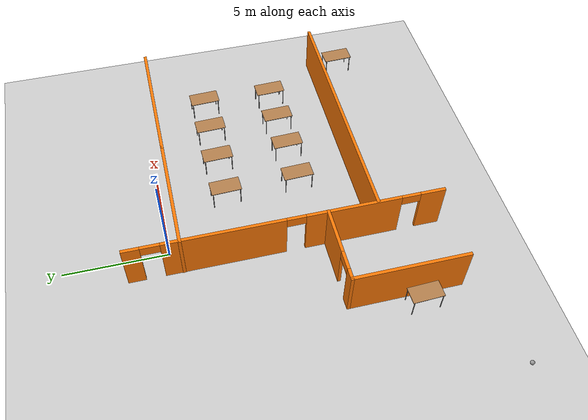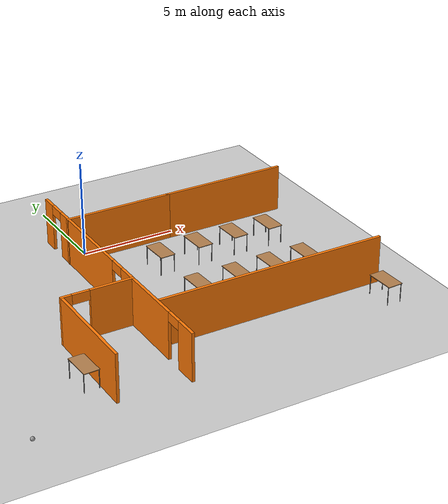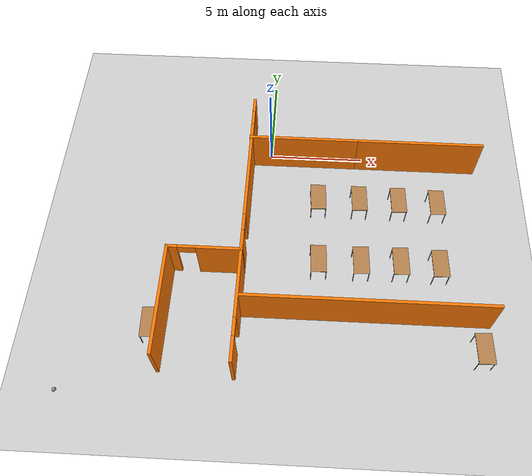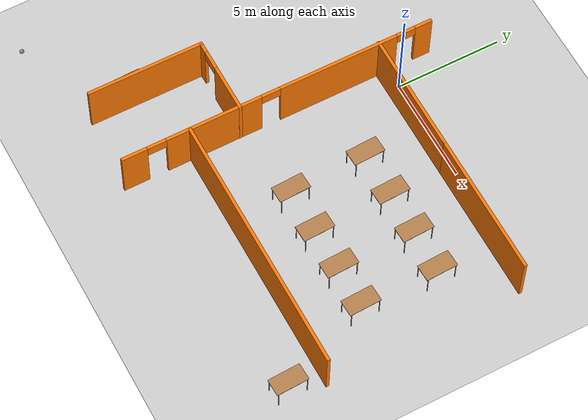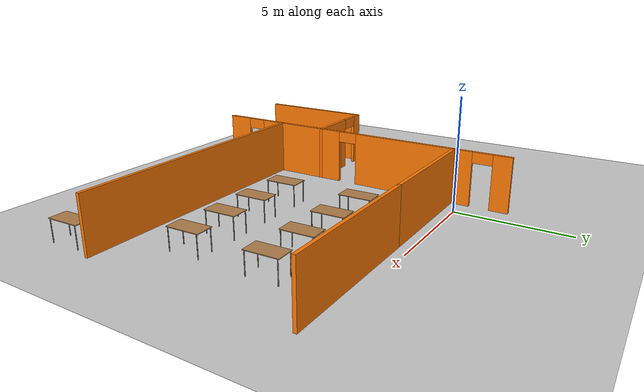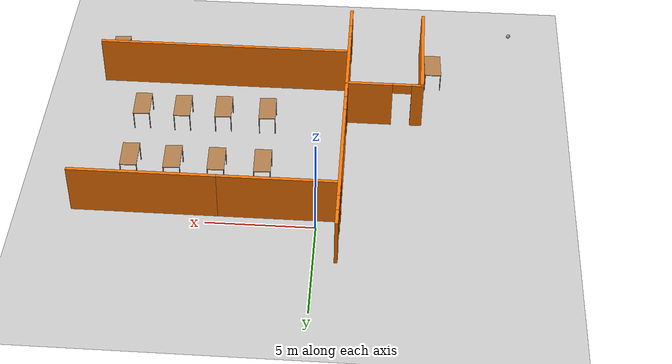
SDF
<sdf version="1.6">
 <world name="default">
  <model name="ground_plane">
   <static>1</static>
   <link name="link">
    <collision name="collision">
     <geometry><plane><normal>0 0 1</normal><size>100 100</size></plane></geometry>
     <surface><friction><ode><mu>100</mu><mu2>50</mu2></ode></friction></surface>
    </collision>
    <visual name="visual">
     <cast_shadows>0</cast_shadows>
     <geometry><plane><normal>0 0 1</normal><size>100 100</size></plane></geometry>
     <material>
      <script><uri>file://media/materials/scripts/gazebo.material</uri><name>Gazebo/Grey</name></script>
     </material>
    </visual>
   </link>
  </model>
  <model name="Building">
   <pose>-10.6691 -0.0294 0 0 -0 0</pose>
   <link name="Wall_169">
    <collision name="Wall_169_Collision">
     <geometry><box><size>6.75 0.15 2.5</size></box></geometry>
     <pose>0 0 1.25 0 -0 0</pose>
    </collision>
    <visual name="Wall_169_Visual">
     <pose>0 0 1.25 0 -0 0</pose>
     <geometry><box><size>6.75 0.15 2.5</size></box></geometry>
     <material>
      <script><uri>file://media/materials/scripts/gazebo.material</uri><name>Gazebo/Grey</name></script>
      <ambient>0.996078 0.47451 0.0196078 1</ambient>
     </material>
     <meta><layer>0</layer></meta>
    </visual>
    <pose>18.5204 -0.507347 0 0 -0 0</pose>
   </link>
   <link name="Wall_177">
    <pose>9.64433 -5.41765 0 0 0 -1.5708</pose>
    <visual name="Wall_177_Visual_0">
     <pose>-7.08426 0 1.25 0 -0 0</pose>
     <geometry><box><size>0.83148 0.15 2.5</size></box></geometry>
     <material>
      <script><uri>file://media/materials/scripts/gazebo.material</uri><name>Gazebo/Grey</name></script>
      <ambient>0.996078 0.47451 0.0196078 1</ambient>
     </material>
     <meta><layer>0</layer></meta>
    </visual>
    <collision name="Wall_177_Collision_0">
     <geometry><box><size>0.83148 0.15 2.5</size></box></geometry>
     <pose>-7.08426 0 1.25 0 -0 0</pose>
    </collision>
    <visual name="Wall_177_Visual_1">
     <pose>-2.91238 0 1.25 0 -0 0</pose>
     <geometry><box><size>5.71227 0.15 2.5</size></box></geometry>
     <material>
      <script><uri>file://media/materials/scripts/gazebo.material</uri><name>Gazebo/Grey</name></script>
      <ambient>0.996078 0.47451 0.0196078 1</ambient>
     </material>
     <meta><layer>0</layer></meta>
    </visual>
    <collision name="Wall_177_Collision_1">
     <geometry><box><size>5.71227 0.15 2.5</size></box></geometry>
     <pose>-2.91238 0 1.25 0 -0 0</pose>
    </collision>
    <visual name="Wall_177_Visual_2">
     <pose>3.11521 0 1.25 0 -0 0</pose>
     <geometry><box><size>4.5429 0.15 2.5</size></box></geometry>
     <material>
      <script><uri>file://media/materials/scripts/gazebo.material</uri><name>Gazebo/Grey</name></script>
      <ambient>0.996078 0.47451 0.0196078 1</ambient>
     </material>
     <meta><layer>0</layer></meta>
    </visual>
    <collision name="Wall_177_Collision_2">
     <geometry><box><size>4.5429 0.15 2.5</size></box></geometry>
     <pose>3.11521 0 1.25 0 -0 0</pose>
    </collision>
    <visual name="Wall_177_Visual_3">
     <pose>6.89333 0 1.25 0 -0 0</pose>
     <geometry><box><size>1.21334 0.15 2.5</size></box></geometry>
     <material>
      <script><uri>file://media/materials/scripts/gazebo.material</uri><name>Gazebo/Grey</name></script>
      <ambient>0.996078 0.47451 0.0196078 1</ambient>
     </material>
     <meta><layer>0</layer></meta>
    </visual>
    <collision name="Wall_177_Collision_3">
     <geometry><box><size>1.21334 0.15 2.5</size></box></geometry>
     <pose>6.89333 0 1.25 0 -0 0</pose>
    </collision>
    <visual name="Wall_177_Visual_4">
     <pose>-6.21852 0 2.25 0 -0 0</pose>
     <geometry><box><size>0.9 0.15 0.5</size></box></geometry>
     <material>
      <script><uri>file://media/materials/scripts/gazebo.material</uri><name>Gazebo/Grey</name></script>
      <ambient>0.996078 0.47451 0.0196078 1</ambient>
     </material>
     <meta><layer>0</layer></meta>
    </visual>
    <collision name="Wall_177_Collision_4">
     <geometry><box><size>0.9 0.15 0.5</size></box></geometry>
     <pose>-6.21852 0 2.25 0 -0 0</pose>
    </collision>
    <visual name="Wall_177_Visual_5">
     <pose>0.393754 0 2.25 0 -0 0</pose>
     <geometry><box><size>0.9 0.15 0.5</size></box></geometry>
     <material>
      <script><uri>file://media/materials/scripts/gazebo.material</uri><name>Gazebo/Grey</name></script>
      <ambient>0.996078 0.47451 0.0196078 1</ambient>
     </material>
     <meta><layer>0</layer></meta>
    </visual>
    <collision name="Wall_177_Collision_5">
     <geometry><box><size>0.9 0.15 0.5</size></box></geometry>
     <pose>0.393754 0 2.25 0 -0 0</pose>
    </collision>
    <visual name="Wall_177_Visual_6">
     <pose>5.83666 0 2.25 0 -0 0</pose>
     <geometry><box><size>0.9 0.15 0.5</size></box></geometry>
     <material>
      <script><uri>file://media/materials/scripts/gazebo.material</uri><name>Gazebo/Grey</name></script>
      <ambient>0.996078 0.47451 0.0196078 1</ambient>
     </material>
     <meta><layer>0</layer></meta>
    </visual>
    <collision name="Wall_177_Collision_6">
     <geometry><box><size>0.9 0.15 0.5</size></box></geometry>
     <pose>5.83666 0 2.25 0 -0 0</pose>
    </collision>
   </link>
   <link name="Wall_179">
    <collision name="Wall_179_Collision">
     <geometry><box><size>5.75 0.15 2.5</size></box></geometry>
     <pose>0 0 1.25 0 -0 0</pose>
    </collision>
    <visual name="Wall_179_Visual">
     <pose>0 0 1.25 0 -0 0</pose>
     <geometry><box><size>5.75 0.15 2.5</size></box></geometry>
     <material>
      <script><uri>file://media/materials/scripts/gazebo.material</uri><name>Gazebo/Grey</name></script>
      <ambient>0.996078 0.47451 0.0196078 1</ambient>
     </material>
     <meta><layer>0</layer></meta>
    </visual>
    <pose>12.4204 -0.507347 0 0 -0 3.14159</pose>
   </link>
   <link name="Wall_181">
    <collision name="Wall_181_Collision">
     <geometry><box><size>12.25 0.15 2.5</size></box></geometry>
     <pose>0 0 1.25 0 -0 0</pose>
    </collision>
    <visual name="Wall_181_Visual">
     <pose>0 0 1.25 0 -0 0</pose>
     <geometry><box><size>12.25 0.15 2.5</size></box></geometry>
     <material>
      <script><uri>file://media/materials/scripts/gazebo.material</uri><name>Gazebo/Grey</name></script>
      <ambient>0.996078 0.47451 0.0196078 1</ambient>
     </material>
     <meta><layer>0</layer></meta>
    </visual>
    <pose>15.7415 -9.67071 0 0 -0 0</pose>
   </link>
   <link name="Wall_183">
    <pose>7.84956 -7.30115 0 0 -0 3.14159</pose>
    <visual name="Wall_183_Visual_0">
     <pose>-0.737336 0 1.25 0 -0 0</pose>
     <geometry><box><size>2.27533 0.15 2.5</size></box></geometry>
     <material>
      <script><uri>file://media/materials/scripts/gazebo.material</uri><name>Gazebo/Grey</name></script>
      <ambient>0.996078 0.47451 0.0196078 1</ambient>
     </material>
     <meta><layer>0</layer></meta>
    </visual>
    <collision name="Wall_183_Collision_0">
     <geometry><box><size>2.27533 0.15 2.5</size></box></geometry>
     <pose>-0.737336 0 1.25 0 -0 0</pose>
    </collision>
    <visual name="Wall_183_Visual_1">
     <pose>1.58766 0 1.25 0 -0 0</pose>
     <geometry><box><size>0.574672 0.15 2.5</size></box></geometry>
     <material>
      <script><uri>file://media/materials/scripts/gazebo.material</uri><name>Gazebo/Grey</name></script>
      <ambient>0.996078 0.47451 0.0196078 1</ambient>
     </material>
     <meta><layer>0</layer></meta>
    </visual>
    <collision name="Wall_183_Collision_1">
     <geometry><box><size>0.574672 0.15 2.5</size></box></geometry>
     <pose>1.58766 0 1.25 0 -0 0</pose>
    </collision>
    <visual name="Wall_183_Visual_2">
     <pose>0.850328 0 2.25 0 -0 0</pose>
     <geometry><box><size>0.9 0.15 0.5</size></box></geometry>
     <material>
      <script><uri>file://media/materials/scripts/gazebo.material</uri><name>Gazebo/Grey</name></script>
      <ambient>0.996078 0.47451 0.0196078 1</ambient>
     </material>
     <meta><layer>0</layer></meta>
    </visual>
    <collision name="Wall_183_Collision_2">
     <geometry><box><size>0.9 0.15 0.5</size></box></geometry>
     <pose>0.850328 0 2.25 0 -0 0</pose>
    </collision>
   </link>
   <link name="Wall_184">
    <collision name="Wall_184_Collision">
     <geometry><box><size>5.5 0.15 2.5</size></box></geometry>
     <pose>0 0 1.25 0 -0 0</pose>
    </collision>
    <visual name="Wall_184_Visual">
     <pose>0 0 1.25 0 -0 0</pose>
     <geometry><box><size>5.5 0.15 2.5</size></box></geometry>
     <material>
      <script><uri>file://media/materials/scripts/gazebo.material</uri><name>Gazebo/Grey</name></script>
      <ambient>0.996078 0.47451 0.0196078 1</ambient>
     </material>
     <meta><layer>0</layer></meta>
    </visual>
    <pose>6.04956 -9.97615 0 0 0 -1.5708</pose>
   </link>
   <static>1</static>
  </model>
  <model name="table_1_clone">
   <static>1</static>
   <link name="link">
    <collision name="surface">
     <pose>0 0 1 0 -0 0</pose>
     <geometry><box><size>1.5 0.8 0.03</size></box></geometry>
     <surface><friction><ode><mu>0.6</mu><mu2>0.6</mu2></ode></friction></surface>
    </collision>
    <visual name="visual1">
     <pose>0 0 1 0 -0 0</pose>
     <geometry><box><size>1.5 0.8 0.03</size></box></geometry>
     <material>
      <script><uri>file://media/materials/scripts/gazebo.material</uri><name>Gazebo/Wood</name></script>
     </material>
    </visual>
    <collision name="front_left_leg">
     <pose>0.68 0.38 0.5 0 -0 0</pose>
     <geometry><cylinder><radius>0.02</radius><length>1</length></cylinder></geometry>
    </collision>
    <visual name="front_left_leg">
     <pose>0.68 0.38 0.5 0 -0 0</pose>
     <geometry><cylinder><radius>0.02</radius><length>1</length></cylinder></geometry>
     <material>
      <script><uri>file://media/materials/scripts/gazebo.material</uri><name>Gazebo/Grey</name></script>
     </material>
    </visual>
    <collision name="front_right_leg">
     <pose>0.68 -0.38 0.5 0 -0 0</pose>
     <geometry><cylinder><radius>0.02</radius><length>1</length></cylinder></geometry>
    </collision>
    <visual name="front_right_leg">
     <pose>0.68 -0.38 0.5 0 -0 0</pose>
     <geometry><cylinder><radius>0.02</radius><length>1</length></cylinder></geometry>
     <material>
      <script><uri>file://media/materials/scripts/gazebo.material</uri><name>Gazebo/Grey</name></script>
     </material>
    </visual>
    <collision name="back_right_leg">
     <pose>-0.68 -0.38 0.5 0 -0 0</pose>
     <geometry><cylinder><radius>0.02</radius><length>1</length></cylinder></geometry>
    </collision>
    <visual name="back_right_leg">
     <pose>-0.68 -0.38 0.5 0 -0 0</pose>
     <geometry><cylinder><radius>0.02</radius><length>1</length></cylinder></geometry>
     <material>
      <script><uri>file://media/materials/scripts/gazebo.material</uri><name>Gazebo/Grey</name></script>
     </material>
    </visual>
    <collision name="back_left_leg">
     <pose>-0.68 0.38 0.5 0 -0 0</pose>
     <geometry><cylinder><radius>0.02</radius><length>1</length></cylinder></geometry>
    </collision>
    <visual name="back_left_leg">
     <pose>-0.68 0.38 0.5 0 -0 0</pose>
     <geometry><cylinder><radius>0.02</radius><length>1</length></cylinder></geometry>
     <material>
      <script><uri>file://media/materials/scripts/gazebo.material</uri><name>Gazebo/Grey</name></script>
     </material>
    </visual>
   </link>
   <pose>8.82431 -6.85187 0 0 -0 1.60797</pose>
  </model>
  <model name="table_1_clone_clone">
   <static>1</static>
   <link name="link">
    <collision name="surface">
     <pose>0 0 1 0 -0 0</pose>
     <geometry><box><size>1.5 0.8 0.03</size></box></geometry>
     <surface><friction><ode><mu>0.6</mu><mu2>0.6</mu2></ode></friction></surface>
    </collision>
    <visual name="visual1">
     <pose>0 0 1 0 -0 0</pose>
     <geometry><box><size>1.5 0.8 0.03</size></box></geometry>
     <material>
      <script><uri>file://media/materials/scripts/gazebo.material</uri><name>Gazebo/Wood</name></script>
     </material>
    </visual>
    <collision name="front_left_leg">
     <pose>0.68 0.38 0.5 0 -0 0</pose>
     <geometry><cylinder><radius>0.02</radius><length>1</length></cylinder></geometry>
    </collision>
    <visual name="front_left_leg">
     <pose>0.68 0.38 0.5 0 -0 0</pose>
     <geometry><cylinder><radius>0.02</radius><length>1</length></cylinder></geometry>
     <material>
      <script><uri>file://media/materials/scripts/gazebo.material</uri><name>Gazebo/Grey</name></script>
     </material>
    </visual>
    <collision name="front_right_leg">
     <pose>0.68 -0.38 0.5 0 -0 0</pose>
     <geometry><cylinder><radius>0.02</radius><length>1</length></cylinder></geometry>
    </collision>
    <visual name="front_right_leg">
     <pose>0.68 -0.38 0.5 0 -0 0</pose>
     <geometry><cylinder><radius>0.02</radius><length>1</length></cylinder></geometry>
     <material>
      <script><uri>file://media/materials/scripts/gazebo.material</uri><name>Gazebo/Grey</name></script>
     </material>
    </visual>
    <collision name="back_right_leg">
     <pose>-0.68 -0.38 0.5 0 -0 0</pose>
     <geometry><cylinder><radius>0.02</radius><length>1</length></cylinder></geometry>
    </collision>
    <visual name="back_right_leg">
     <pose>-0.68 -0.38 0.5 0 -0 0</pose>
     <geometry><cylinder><radius>0.02</radius><length>1</length></cylinder></geometry>
     <material>
      <script><uri>file://media/materials/scripts/gazebo.material</uri><name>Gazebo/Grey</name></script>
     </material>
    </visual>
    <collision name="back_left_leg">
     <pose>-0.68 0.38 0.5 0 -0 0</pose>
     <geometry><cylinder><radius>0.02</radius><length>1</length></cylinder></geometry>
    </collision>
    <visual name="back_left_leg">
     <pose>-0.68 0.38 0.5 0 -0 0</pose>
     <geometry><cylinder><radius>0.02</radius><length>1</length></cylinder></geometry>
     <material>
      <script><uri>file://media/materials/scripts/gazebo.material</uri><name>Gazebo/Grey</name></script>
     </material>
    </visual>
   </link>
   <pose>6.86027 -6.81805 0 0 -0 1.60797</pose>
  </model>
  <model name="table_1_clone_clone_clone">
   <static>1</static>
   <link name="link">
    <collision name="surface">
     <pose>0 0 1 0 -0 0</pose>
     <geometry><box><size>1.5 0.8 0.03</size></box></geometry>
     <surface><friction><ode><mu>0.6</mu><mu2>0.6</mu2></ode></friction></surface>
    </collision>
    <visual name="visual1">
     <pose>0 0 1 0 -0 0</pose>
     <geometry><box><size>1.5 0.8 0.03</size></box></geometry>
     <material>
      <script><uri>file://media/materials/scripts/gazebo.material</uri><name>Gazebo/Wood</name></script>
     </material>
    </visual>
    <collision name="front_left_leg">
     <pose>0.68 0.38 0.5 0 -0 0</pose>
     <geometry><cylinder><radius>0.02</radius><length>1</length></cylinder></geometry>
    </collision>
    <visual name="front_left_leg">
     <pose>0.68 0.38 0.5 0 -0 0</pose>
     <geometry><cylinder><radius>0.02</radius><length>1</length></cylinder></geometry>
     <material>
      <script><uri>file://media/materials/scripts/gazebo.material</uri><name>Gazebo/Grey</name></script>
     </material>
    </visual>
    <collision name="front_right_leg">
     <pose>0.68 -0.38 0.5 0 -0 0</pose>
     <geometry><cylinder><radius>0.02</radius><length>1</length></cylinder></geometry>
    </collision>
    <visual name="front_right_leg">
     <pose>0.68 -0.38 0.5 0 -0 0</pose>
     <geometry><cylinder><radius>0.02</radius><length>1</length></cylinder></geometry>
     <material>
      <script><uri>file://media/materials/scripts/gazebo.material</uri><name>Gazebo/Grey</name></script>
     </material>
    </visual>
    <collision name="back_right_leg">
     <pose>-0.68 -0.38 0.5 0 -0 0</pose>
     <geometry><cylinder><radius>0.02</radius><length>1</length></cylinder></geometry>
    </collision>
    <visual name="back_right_leg">
     <pose>-0.68 -0.38 0.5 0 -0 0</pose>
     <geometry><cylinder><radius>0.02</radius><length>1</length></cylinder></geometry>
     <material>
      <script><uri>file://media/materials/scripts/gazebo.material</uri><name>Gazebo/Grey</name></script>
     </material>
    </visual>
    <collision name="back_left_leg">
     <pose>-0.68 0.38 0.5 0 -0 0</pose>
     <geometry><cylinder><radius>0.02</radius><length>1</length></cylinder></geometry>
    </collision>
    <visual name="back_left_leg">
     <pose>-0.68 0.38 0.5 0 -0 0</pose>
     <geometry><cylinder><radius>0.02</radius><length>1</length></cylinder></geometry>
     <material>
      <script><uri>file://media/materials/scripts/gazebo.material</uri><name>Gazebo/Grey</name></script>
     </material>
    </visual>
   </link>
   <pose>4.87667 -6.86713 0 0 -0 1.60797</pose>
  </model>
  <model name="table_1_clone_clone_clone_0">
   <static>1</static>
   <link name="link">
    <collision name="surface">
     <pose>0 0 1 0 -0 0</pose>
     <geometry><box><size>1.5 0.8 0.03</size></box></geometry>
     <surface><friction><ode><mu>0.6</mu><mu2>0.6</mu2></ode></friction></surface>
    </collision>
    <visual name="visual1">
     <pose>0 0 1 0 -0 0</pose>
     <geometry><box><size>1.5 0.8 0.03</size></box></geometry>
     <material>
      <script><uri>file://media/materials/scripts/gazebo.material</uri><name>Gazebo/Wood</name></script>
     </material>
    </visual>
    <collision name="front_left_leg">
     <pose>0.68 0.38 0.5 0 -0 0</pose>
     <geometry><cylinder><radius>0.02</radius><length>1</length></cylinder></geometry>
    </collision>
    <visual name="front_left_leg">
     <pose>0.68 0.38 0.5 0 -0 0</pose>
     <geometry><cylinder><radius>0.02</radius><length>1</length></cylinder></geometry>
     <material>
      <script><uri>file://media/materials/scripts/gazebo.material</uri><name>Gazebo/Grey</name></script>
     </material>
    </visual>
    <collision name="front_right_leg">
     <pose>0.68 -0.38 0.5 0 -0 0</pose>
     <geometry><cylinder><radius>0.02</radius><length>1</length></cylinder></geometry>
    </collision>
    <visual name="front_right_leg">
     <pose>0.68 -0.38 0.5 0 -0 0</pose>
     <geometry><cylinder><radius>0.02</radius><length>1</length></cylinder></geometry>
     <material>
      <script><uri>file://media/materials/scripts/gazebo.material</uri><name>Gazebo/Grey</name></script>
     </material>
    </visual>
    <collision name="back_right_leg">
     <pose>-0.68 -0.38 0.5 0 -0 0</pose>
     <geometry><cylinder><radius>0.02</radius><length>1</length></cylinder></geometry>
    </collision>
    <visual name="back_right_leg">
     <pose>-0.68 -0.38 0.5 0 -0 0</pose>
     <geometry><cylinder><radius>0.02</radius><length>1</length></cylinder></geometry>
     <material>
      <script><uri>file://media/materials/scripts/gazebo.material</uri><name>Gazebo/Grey</name></script>
     </material>
    </visual>
    <collision name="back_left_leg">
     <pose>-0.68 0.38 0.5 0 -0 0</pose>
     <geometry><cylinder><radius>0.02</radius><length>1</length></cylinder></geometry>
    </collision>
    <visual name="back_left_leg">
     <pose>-0.68 0.38 0.5 0 -0 0</pose>
     <geometry><cylinder><radius>0.02</radius><length>1</length></cylinder></geometry>
     <material>
      <script><uri>file://media/materials/scripts/gazebo.material</uri><name>Gazebo/Grey</name></script>
     </material>
    </visual>
   </link>
   <pose>2.74499 -6.87032 0 0 -0 1.60797</pose>
  </model>
  <model name="table_1_clone_clone_clone_1">
   <static>1</static>
   <link name="link">
    <collision name="surface">
     <pose>0 0 1 0 -0 0</pose>
     <geometry><box><size>1.5 0.8 0.03</size></box></geometry>
     <surface><friction><ode><mu>0.6</mu><mu2>0.6</mu2></ode></friction></surface>
    </collision>
    <visual name="visual1">
     <pose>0 0 1 0 -0 0</pose>
     <geometry><box><size>1.5 0.8 0.03</size></box></geometry>
     <material>
      <script><uri>file://media/materials/scripts/gazebo.material</uri><name>Gazebo/Wood</name></script>
     </material>
    </visual>
    <collision name="front_left_leg">
     <pose>0.68 0.38 0.5 0 -0 0</pose>
     <geometry><cylinder><radius>0.02</radius><length>1</length></cylinder></geometry>
    </collision>
    <visual name="front_left_leg">
     <pose>0.68 0.38 0.5 0 -0 0</pose>
     <geometry><cylinder><radius>0.02</radius><length>1</length></cylinder></geometry>
     <material>
      <script><uri>file://media/materials/scripts/gazebo.material</uri><name>Gazebo/Grey</name></script>
     </material>
    </visual>
    <collision name="front_right_leg">
     <pose>0.68 -0.38 0.5 0 -0 0</pose>
     <geometry><cylinder><radius>0.02</radius><length>1</length></cylinder></geometry>
    </collision>
    <visual name="front_right_leg">
     <pose>0.68 -0.38 0.5 0 -0 0</pose>
     <geometry><cylinder><radius>0.02</radius><length>1</length></cylinder></geometry>
     <material>
      <script><uri>file://media/materials/scripts/gazebo.material</uri><name>Gazebo/Grey</name></script>
     </material>
    </visual>
    <collision name="back_right_leg">
     <pose>-0.68 -0.38 0.5 0 -0 0</pose>
     <geometry><cylinder><radius>0.02</radius><length>1</length></cylinder></geometry>
    </collision>
    <visual name="back_right_leg">
     <pose>-0.68 -0.38 0.5 0 -0 0</pose>
     <geometry><cylinder><radius>0.02</radius><length>1</length></cylinder></geometry>
     <material>
      <script><uri>file://media/materials/scripts/gazebo.material</uri><name>Gazebo/Grey</name></script>
     </material>
    </visual>
    <collision name="back_left_leg">
     <pose>-0.68 0.38 0.5 0 -0 0</pose>
     <geometry><cylinder><radius>0.02</radius><length>1</length></cylinder></geometry>
    </collision>
    <visual name="back_left_leg">
     <pose>-0.68 0.38 0.5 0 -0 0</pose>
     <geometry><cylinder><radius>0.02</radius><length>1</length></cylinder></geometry>
     <material>
      <script><uri>file://media/materials/scripts/gazebo.material</uri><name>Gazebo/Grey</name></script>
     </material>
    </visual>
   </link>
   <pose>2.65481 -3.21072 0 0 -0 1.60797</pose>
  </model>
  <model name="table_1_clone_clone_clone_2">
   <static>1</static>
   <link name="link">
    <collision name="surface">
     <pose>0 0 1 0 -0 0</pose>
     <geometry><box><size>1.5 0.8 0.03</size></box></geometry>
     <surface><friction><ode><mu>0.6</mu><mu2>0.6</mu2></ode></friction></surface>
    </collision>
    <visual name="visual1">
     <pose>0 0 1 0 -0 0</pose>
     <geometry><box><size>1.5 0.8 0.03</size></box></geometry>
     <material>
      <script><uri>file://media/materials/scripts/gazebo.material</uri><name>Gazebo/Wood</name></script>
     </material>
    </visual>
    <collision name="front_left_leg">
     <pose>0.68 0.38 0.5 0 -0 0</pose>
     <geometry><cylinder><radius>0.02</radius><length>1</length></cylinder></geometry>
    </collision>
    <visual name="front_left_leg">
     <pose>0.68 0.38 0.5 0 -0 0</pose>
     <geometry><cylinder><radius>0.02</radius><length>1</length></cylinder></geometry>
     <material>
      <script><uri>file://media/materials/scripts/gazebo.material</uri><name>Gazebo/Grey</name></script>
     </material>
    </visual>
    <collision name="front_right_leg">
     <pose>0.68 -0.38 0.5 0 -0 0</pose>
     <geometry><cylinder><radius>0.02</radius><length>1</length></cylinder></geometry>
    </collision>
    <visual name="front_right_leg">
     <pose>0.68 -0.38 0.5 0 -0 0</pose>
     <geometry><cylinder><radius>0.02</radius><length>1</length></cylinder></geometry>
     <material>
      <script><uri>file://media/materials/scripts/gazebo.material</uri><name>Gazebo/Grey</name></script>
     </material>
    </visual>
    <collision name="back_right_leg">
     <pose>-0.68 -0.38 0.5 0 -0 0</pose>
     <geometry><cylinder><radius>0.02</radius><length>1</length></cylinder></geometry>
    </collision>
    <visual name="back_right_leg">
     <pose>-0.68 -0.38 0.5 0 -0 0</pose>
     <geometry><cylinder><radius>0.02</radius><length>1</length></cylinder></geometry>
     <material>
      <script><uri>file://media/materials/scripts/gazebo.material</uri><name>Gazebo/Grey</name></script>
     </material>
    </visual>
    <collision name="back_left_leg">
     <pose>-0.68 0.38 0.5 0 -0 0</pose>
     <geometry><cylinder><radius>0.02</radius><length>1</length></cylinder></geometry>
    </collision>
    <visual name="back_left_leg">
     <pose>-0.68 0.38 0.5 0 -0 0</pose>
     <geometry><cylinder><radius>0.02</radius><length>1</length></cylinder></geometry>
     <material>
      <script><uri>file://media/materials/scripts/gazebo.material</uri><name>Gazebo/Grey</name></script>
     </material>
    </visual>
   </link>
   <pose>4.81035 -3.20047 0 0 -0 1.60797</pose>
  </model>
  <model name="table_1_clone_clone_clone_3">
   <static>1</static>
   <link name="link">
    <collision name="surface">
     <pose>0 0 1 0 -0 0</pose>
     <geometry><box><size>1.5 0.8 0.03</size></box></geometry>
     <surface><friction><ode><mu>0.6</mu><mu2>0.6</mu2></ode></friction></surface>
    </collision>
    <visual name="visual1">
     <pose>0 0 1 0 -0 0</pose>
     <geometry><box><size>1.5 0.8 0.03</size></box></geometry>
     <material>
      <script><uri>file://media/materials/scripts/gazebo.material</uri><name>Gazebo/Wood</name></script>
     </material>
    </visual>
    <collision name="front_left_leg">
     <pose>0.68 0.38 0.5 0 -0 0</pose>
     <geometry><cylinder><radius>0.02</radius><length>1</length></cylinder></geometry>
    </collision>
    <visual name="front_left_leg">
     <pose>0.68 0.38 0.5 0 -0 0</pose>
     <geometry><cylinder><radius>0.02</radius><length>1</length></cylinder></geometry>
     <material>
      <script><uri>file://media/materials/scripts/gazebo.material</uri><name>Gazebo/Grey</name></script>
     </material>
    </visual>
    <collision name="front_right_leg">
     <pose>0.68 -0.38 0.5 0 -0 0</pose>
     <geometry><cylinder><radius>0.02</radius><length>1</length></cylinder></geometry>
    </collision>
    <visual name="front_right_leg">
     <pose>0.68 -0.38 0.5 0 -0 0</pose>
     <geometry><cylinder><radius>0.02</radius><length>1</length></cylinder></geometry>
     <material>
      <script><uri>file://media/materials/scripts/gazebo.material</uri><name>Gazebo/Grey</name></script>
     </material>
    </visual>
    <collision name="back_right_leg">
     <pose>-0.68 -0.38 0.5 0 -0 0</pose>
     <geometry><cylinder><radius>0.02</radius><length>1</length></cylinder></geometry>
    </collision>
    <visual name="back_right_leg">
     <pose>-0.68 -0.38 0.5 0 -0 0</pose>
     <geometry><cylinder><radius>0.02</radius><length>1</length></cylinder></geometry>
     <material>
      <script><uri>file://media/materials/scripts/gazebo.material</uri><name>Gazebo/Grey</name></script>
     </material>
    </visual>
    <collision name="back_left_leg">
     <pose>-0.68 0.38 0.5 0 -0 0</pose>
     <geometry><cylinder><radius>0.02</radius><length>1</length></cylinder></geometry>
    </collision>
    <visual name="back_left_leg">
     <pose>-0.68 0.38 0.5 0 -0 0</pose>
     <geometry><cylinder><radius>0.02</radius><length>1</length></cylinder></geometry>
     <material>
      <script><uri>file://media/materials/scripts/gazebo.material</uri><name>Gazebo/Grey</name></script>
     </material>
    </visual>
   </link>
   <pose>6.86647 -3.21135 0 0 -0 1.60797</pose>
  </model>
  <model name="table_1_clone_clone_clone_4">
   <static>1</static>
   <link name="link">
    <collision name="surface">
     <pose>0 0 1 0 -0 0</pose>
     <geometry><box><size>1.5 0.8 0.03</size></box></geometry>
     <surface><friction><ode><mu>0.6</mu><mu2>0.6</mu2></ode></friction></surface>
    </collision>
    <visual name="visual1">
     <pose>0 0 1 0 -0 0</pose>
     <geometry><box><size>1.5 0.8 0.03</size></box></geometry>
     <material>
      <script><uri>file://media/materials/scripts/gazebo.material</uri><name>Gazebo/Wood</name></script>
     </material>
    </visual>
    <collision name="front_left_leg">
     <pose>0.68 0.38 0.5 0 -0 0</pose>
     <geometry><cylinder><radius>0.02</radius><length>1</length></cylinder></geometry>
    </collision>
    <visual name="front_left_leg">
     <pose>0.68 0.38 0.5 0 -0 0</pose>
     <geometry><cylinder><radius>0.02</radius><length>1</length></cylinder></geometry>
     <material>
      <script><uri>file://media/materials/scripts/gazebo.material</uri><name>Gazebo/Grey</name></script>
     </material>
    </visual>
    <collision name="front_right_leg">
     <pose>0.68 -0.38 0.5 0 -0 0</pose>
     <geometry><cylinder><radius>0.02</radius><length>1</length></cylinder></geometry>
    </collision>
    <visual name="front_right_leg">
     <pose>0.68 -0.38 0.5 0 -0 0</pose>
     <geometry><cylinder><radius>0.02</radius><length>1</length></cylinder></geometry>
     <material>
      <script><uri>file://media/materials/scripts/gazebo.material</uri><name>Gazebo/Grey</name></script>
     </material>
    </visual>
    <collision name="back_right_leg">
     <pose>-0.68 -0.38 0.5 0 -0 0</pose>
     <geometry><cylinder><radius>0.02</radius><length>1</length></cylinder></geometry>
    </collision>
    <visual name="back_right_leg">
     <pose>-0.68 -0.38 0.5 0 -0 0</pose>
     <geometry><cylinder><radius>0.02</radius><length>1</length></cylinder></geometry>
     <material>
      <script><uri>file://media/materials/scripts/gazebo.material</uri><name>Gazebo/Grey</name></script>
     </material>
    </visual>
    <collision name="back_left_leg">
     <pose>-0.68 0.38 0.5 0 -0 0</pose>
     <geometry><cylinder><radius>0.02</radius><length>1</length></cylinder></geometry>
    </collision>
    <visual name="back_left_leg">
     <pose>-0.68 0.38 0.5 0 -0 0</pose>
     <geometry><cylinder><radius>0.02</radius><length>1</length></cylinder></geometry>
     <material>
      <script><uri>file://media/materials/scripts/gazebo.material</uri><name>Gazebo/Grey</name></script>
     </material>
    </visual>
   </link>
   <pose>8.88806 -3.2515 0 0 -0 1.60797</pose>
  </model>
  <model name="table_1_clone_clone_clone_1_clone_4">
   <static>1</static>
   <link name="link">
    <collision name="surface">
     <pose>0 0 1 0 -0 0</pose>
     <geometry><box><size>1.5 0.8 0.03</size></box></geometry>
     <surface><friction><ode><mu>0.6</mu><mu2>0.6</mu2></ode></friction></surface>
    </collision>
    <visual name="visual1">
     <pose>0 0 1 0 -0 0</pose>
     <geometry><box><size>1.5 0.8 0.03</size></box></geometry>
     <material>
      <script><uri>file://media/materials/scripts/gazebo.material</uri><name>Gazebo/Wood</name></script>
     </material>
    </visual>
    <collision name="front_left_leg">
     <pose>0.68 0.38 0.5 0 -0 0</pose>
     <geometry><cylinder><radius>0.02</radius><length>1</length></cylinder></geometry>
    </collision>
    <visual name="front_left_leg">
     <pose>0.68 0.38 0.5 0 -0 0</pose>
     <geometry><cylinder><radius>0.02</radius><length>1</length></cylinder></geometry>
     <material>
      <script><uri>file://media/materials/scripts/gazebo.material</uri><name>Gazebo/Grey</name></script>
     </material>
    </visual>
    <collision name="front_right_leg">
     <pose>0.68 -0.38 0.5 0 -0 0</pose>
     <geometry><cylinder><radius>0.02</radius><length>1</length></cylinder></geometry>
    </collision>
    <visual name="front_right_leg">
     <pose>0.68 -0.38 0.5 0 -0 0</pose>
     <geometry><cylinder><radius>0.02</radius><length>1</length></cylinder></geometry>
     <material>
      <script><uri>file://media/materials/scripts/gazebo.material</uri><name>Gazebo/Grey</name></script>
     </material>
    </visual>
    <collision name="back_right_leg">
     <pose>-0.68 -0.38 0.5 0 -0 0</pose>
     <geometry><cylinder><radius>0.02</radius><length>1</length></cylinder></geometry>
    </collision>
    <visual name="back_right_leg">
     <pose>-0.68 -0.38 0.5 0 -0 0</pose>
     <geometry><cylinder><radius>0.02</radius><length>1</length></cylinder></geometry>
     <material>
      <script><uri>file://media/materials/scripts/gazebo.material</uri><name>Gazebo/Grey</name></script>
     </material>
    </visual>
    <collision name="back_left_leg">
     <pose>-0.68 0.38 0.5 0 -0 0</pose>
     <geometry><cylinder><radius>0.02</radius><length>1</length></cylinder></geometry>
    </collision>
    <visual name="back_left_leg">
     <pose>-0.68 0.38 0.5 0 -0 0</pose>
     <geometry><cylinder><radius>0.02</radius><length>1</length></cylinder></geometry>
     <material>
      <script><uri>file://media/materials/scripts/gazebo.material</uri><name>Gazebo/Grey</name></script>
     </material>
    </visual>
   </link>
   <pose>-5.18957 -10.6566 0 0 -0 1.60797</pose>
  </model>
  <model name="table_1_clone_clone_clone_1_clone_5">
   <static>1</static>
   <link name="link">
    <collision name="surface">
     <pose>0 0 1 0 -0 0</pose>
     <geometry><box><size>1.5 0.8 0.03</size></box></geometry>
     <surface><friction><ode><mu>0.6</mu><mu2>0.6</mu2></ode></friction></surface>
    </collision>
    <visual name="visual1">
     <pose>0 0 1 0 -0 0</pose>
     <geometry><box><size>1.5 0.8 0.03</size></box></geometry>
     <material>
      <script><uri>file://media/materials/scripts/gazebo.material</uri><name>Gazebo/Wood</name></script>
     </material>
    </visual>
    <collision name="front_left_leg">
     <pose>0.68 0.38 0.5 0 -0 0</pose>
     <geometry><cylinder><radius>0.02</radius><length>1</length></cylinder></geometry>
    </collision>
    <visual name="front_left_leg">
     <pose>0.68 0.38 0.5 0 -0 0</pose>
     <geometry><cylinder><radius>0.02</radius><length>1</length></cylinder></geometry>
     <material>
      <script><uri>file://media/materials/scripts/gazebo.material</uri><name>Gazebo/Grey</name></script>
     </material>
    </visual>
    <collision name="front_right_leg">
     <pose>0.68 -0.38 0.5 0 -0 0</pose>
     <geometry><cylinder><radius>0.02</radius><length>1</length></cylinder></geometry>
    </collision>
    <visual name="front_right_leg">
     <pose>0.68 -0.38 0.5 0 -0 0</pose>
     <geometry><cylinder><radius>0.02</radius><length>1</length></cylinder></geometry>
     <material>
      <script><uri>file://media/materials/scripts/gazebo.material</uri><name>Gazebo/Grey</name></script>
     </material>
    </visual>
    <collision name="back_right_leg">
     <pose>-0.68 -0.38 0.5 0 -0 0</pose>
     <geometry><cylinder><radius>0.02</radius><length>1</length></cylinder></geometry>
    </collision>
    <visual name="back_right_leg">
     <pose>-0.68 -0.38 0.5 0 -0 0</pose>
     <geometry><cylinder><radius>0.02</radius><length>1</length></cylinder></geometry>
     <material>
      <script><uri>file://media/materials/scripts/gazebo.material</uri><name>Gazebo/Grey</name></script>
     </material>
    </visual>
    <collision name="back_left_leg">
     <pose>-0.68 0.38 0.5 0 -0 0</pose>
     <geometry><cylinder><radius>0.02</radius><length>1</length></cylinder></geometry>
    </collision>
    <visual name="back_left_leg">
     <pose>-0.68 0.38 0.5 0 -0 0</pose>
     <geometry><cylinder><radius>0.02</radius><length>1</length></cylinder></geometry>
     <material>
      <script><uri>file://media/materials/scripts/gazebo.material</uri><name>Gazebo/Grey</name></script>
     </material>
    </visual>
   </link>
   <pose>10.5782 -11.1943 0 0 -0 1.60797</pose>
  </model>
  <model name="my_ball">
   <link name="link_0">
    <pose>-7.69994 -2.10807 0.5 0 -0 0</pose>
    <inertial>
     <mass>1</mass>
     <inertia><ixx>0.1</ixx><ixy>0</ixy><ixz>0</ixz><iyy>0.1</iyy><iyz>0</iyz><izz>0.1</izz></inertia>
    </inertial>
    <visual name="visual">
     <geometry><sphere><radius>0.1</radius></sphere></geometry>
     <material>
      <lighting>1</lighting>
      <script><uri>file://media/materials/scripts/gazebo.material</uri><name>Gazebo/Grey</name></script>
      <shader type="pixel"><normal_map>__default__</normal_map></shader>
      <ambient>1 1 1 1</ambient>
      <diffuse>1 1 1 1</diffuse>
      <specular>1 1 1 1</specular>
      <emissive>1 1 1 1</emissive>
     </material>
    </visual>
    <collision name="collision">
     <geometry><sphere><radius>0.1</radius></sphere></geometry>
     <surface>
      <friction>
       <ode><mu>1</mu><mu2>1</mu2><fdir1>0 0 0</fdir1><slip1>0</slip1><slip2>0</slip2></ode>
       <torsional>
        <coefficient>1</coefficient>
        <patch_radius>0</patch_radius>
        <surface_radius>0</surface_radius>
        <use_patch_radius>1</use_patch_radius>
        <ode><slip>0</slip></ode>
       </torsional>
      </friction>
      <bounce><restitution_coefficient>0</restitution_coefficient><threshold>1e+06</threshold></bounce>
      <contact>
       <collide_without_contact>0</collide_without_contact>
       <collide_without_contact_bitmask>1</collide_without_contact_bitmask>
       <collide_bitmask>1</collide_bitmask>
       <ode>
        <soft_cfm>0</soft_cfm>
        <soft_erp>0.2</soft_erp>
        <kp>1e+13</kp>
        <kd>1</kd>
        <max_vel>0.01</max_vel>
        <min_depth>0</min_depth>
       </ode>
       <bullet>
        <split_impulse>1</split_impulse>
        <split_impulse_penetration_threshold>-0.01</split_impulse_penetration_threshold>
        <soft_cfm>0</soft_cfm>
        <soft_erp>0.2</soft_erp>
        <kp>1e+13</kp>
        <kd>1</kd>
       </bullet>
      </contact>
     </surface>
    </collision>
   </link>
   <static>0</static>
   <pose>-1.41955 -11.8333 0 0 -0 0</pose>
  </model>
 </world>
</sdf>
